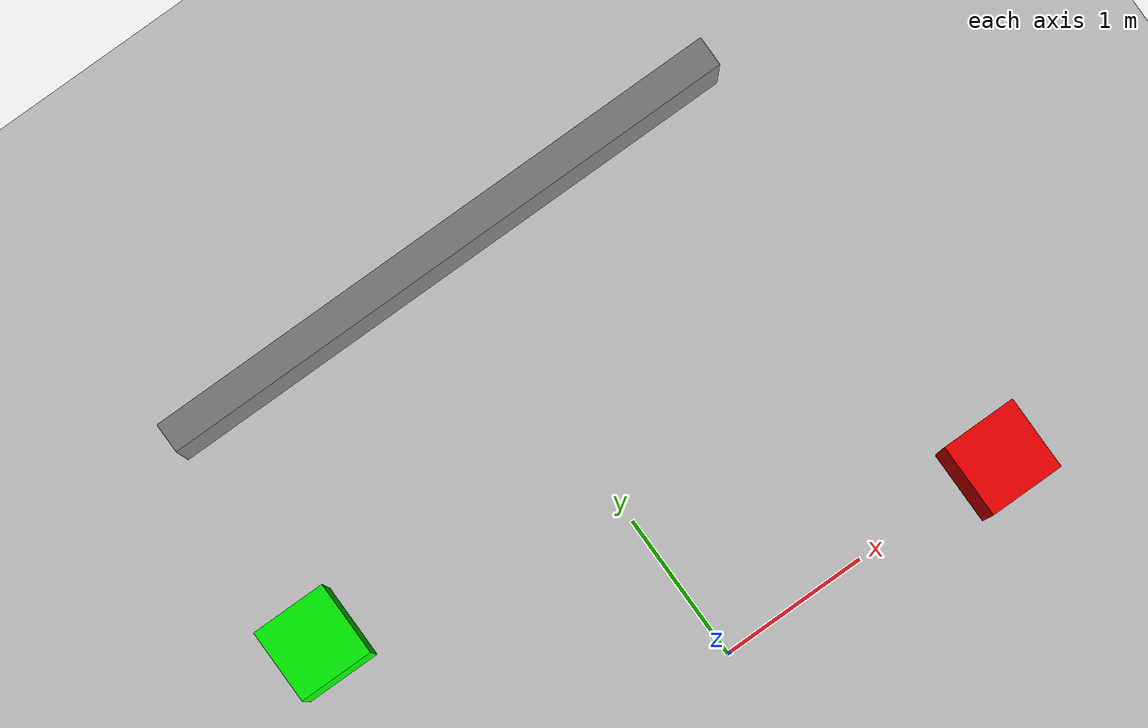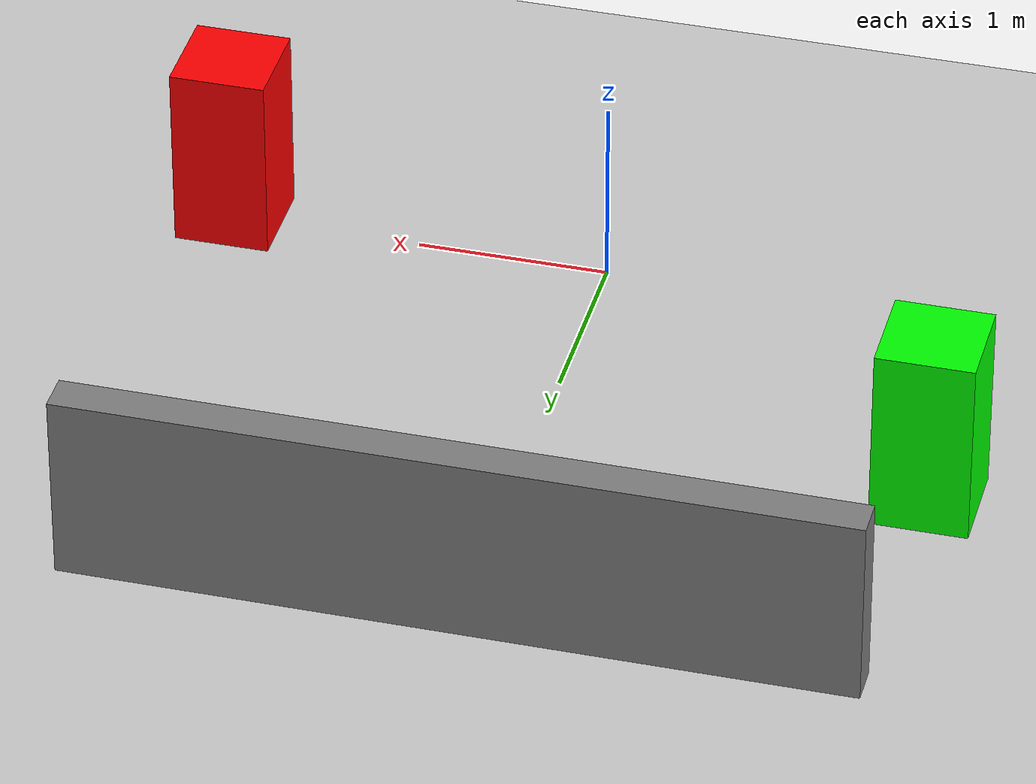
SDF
<?xml version="1.0" ?>
<sdf version="1.8">
  <world name="slam_world">

    <!-- Physics -->
    <physics name="1ms" type="ignored">
      <max_step_size>0.001</max_step_size>
      <real_time_factor>1.0</real_time_factor>
    </physics>

    <!-- Plugins -->
    <plugin filename="gz-sim-physics-system" name="gz::sim::systems::Physics">
    </plugin>
    <plugin filename="gz-sim-user-commands-system" name="gz::sim::systems::UserCommands">
    </plugin>
    <plugin filename="gz-sim-scene-broadcaster-system" name="gz::sim::systems::SceneBroadcaster">
    </plugin>
    <plugin filename="gz-sim-sensors-system" name="gz::sim::systems::Sensors">
      <render_engine>ogre2</render_engine>
    </plugin>

    <!-- Lighting -->
    <light type="directional" name="sun">
      <cast_shadows>true</cast_shadows>
      <pose>0 0 10 0 0 0</pose>
      <diffuse>0.8 0.8 0.8 1</diffuse>
      <specular>0.2 0.2 0.2 1</specular>
      <attenuation>
        <range>1000</range>
        <constant>0.9</constant>
        <linear>0.01</linear>
        <quadratic>0.001</quadratic>
      </attenuation>
      <direction>-0.5 0.1 -0.9</direction>
    </light>

    <!-- Ground plane -->
    <model name="ground_plane">
      <static>true</static>
      <link name="link">
        <collision name="collision">
          <geometry>
            <plane>
              <normal>0 0 1</normal>
            </plane>
          </geometry>
        </collision>
        <visual name="visual">
          <geometry>
            <plane>
              <normal>0 0 1</normal>
              <size>100 100</size>
            </plane>
          </geometry>
          <material>
            <ambient>0.8 0.8 0.8 1</ambient>
            <diffuse>0.8 0.8 0.8 1</diffuse>
            <specular>0.8 0.8 0.8 1</specular>
          </material>
        </visual>
      </link>
    </model>

    <!-- Some obstacles for SLAM testing -->
    <model name="box1">
      <pose>2 0 0.5 0 0 0</pose>
      <static>true</static>
      <link name="link">
        <collision name="collision">
          <geometry>
            <box>
              <size>0.5 0.5 1.0</size>
            </box>
          </geometry>
        </collision>
        <visual name="visual">
          <geometry>
            <box>
              <size>0.5 0.5 1.0</size>
            </box>
          </geometry>
          <material>
            <ambient>1 0 0 1</ambient>
            <diffuse>1 0 0 1</diffuse>
          </material>
        </visual>
      </link>
    </model>

    <model name="box2">
      <pose>-2 1.5 0.5 0 0 0</pose>
      <static>true</static>
      <link name="link">
        <collision name="collision">
          <geometry>
            <box>
              <size>0.5 0.5 1.0</size>
            </box>
          </geometry>
        </collision>
        <visual name="visual">
          <geometry>
            <box>
              <size>0.5 0.5 1.0</size>
            </box>
          </geometry>
          <material>
            <ambient>0 1 0 1</ambient>
            <diffuse>0 1 0 1</diffuse>
          </material>
        </visual>
      </link>
    </model>

    <model name="wall">
      <pose>0 3 0.5 0 0 0</pose>
      <static>true</static>
      <link name="link">
        <collision name="collision">
          <geometry>
            <box>
              <size>4.0 0.2 1.0</size>
            </box>
          </geometry>
        </collision>
        <visual name="visual">
          <geometry>
            <box>
              <size>4.0 0.2 1.0</size>
            </box>
          </geometry>
          <material>
            <ambient>0.5 0.5 0.5 1</ambient>
            <diffuse>0.5 0.5 0.5 1</diffuse>
          </material>
        </visual>
      </link>
    </model>

  </world>
</sdf>
